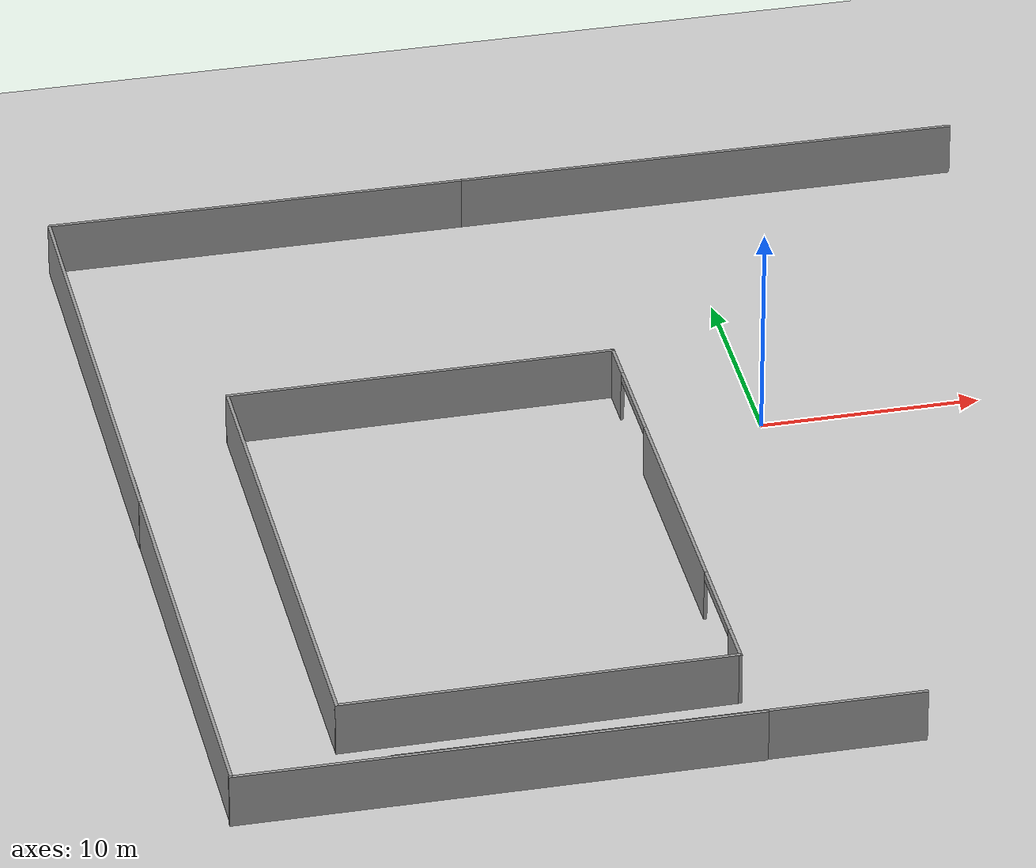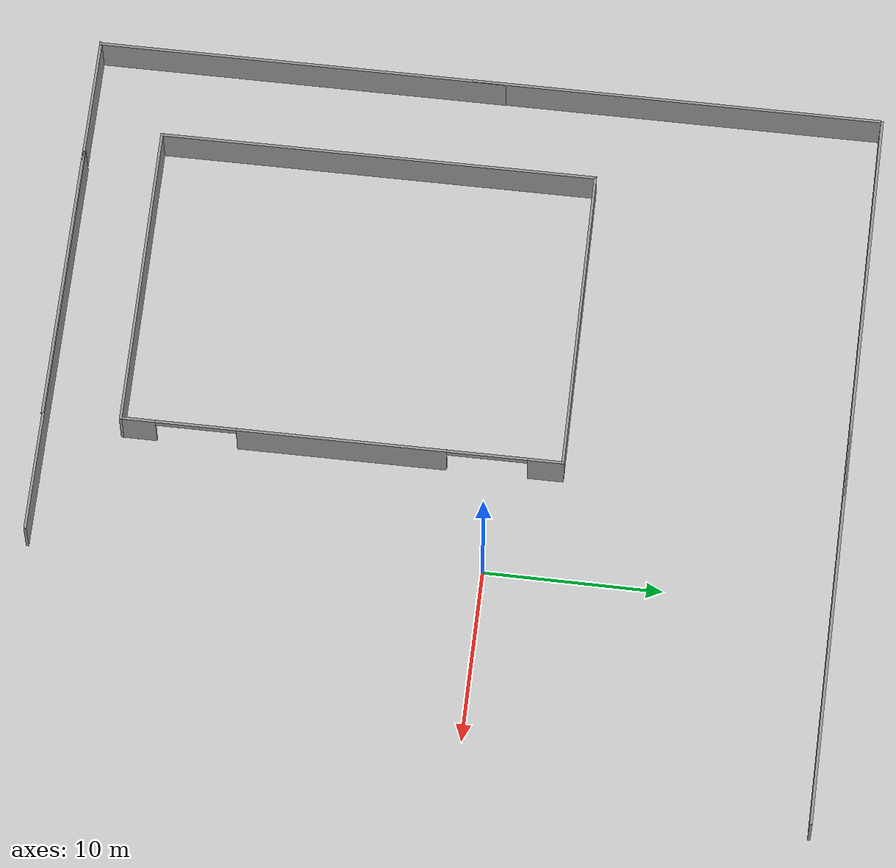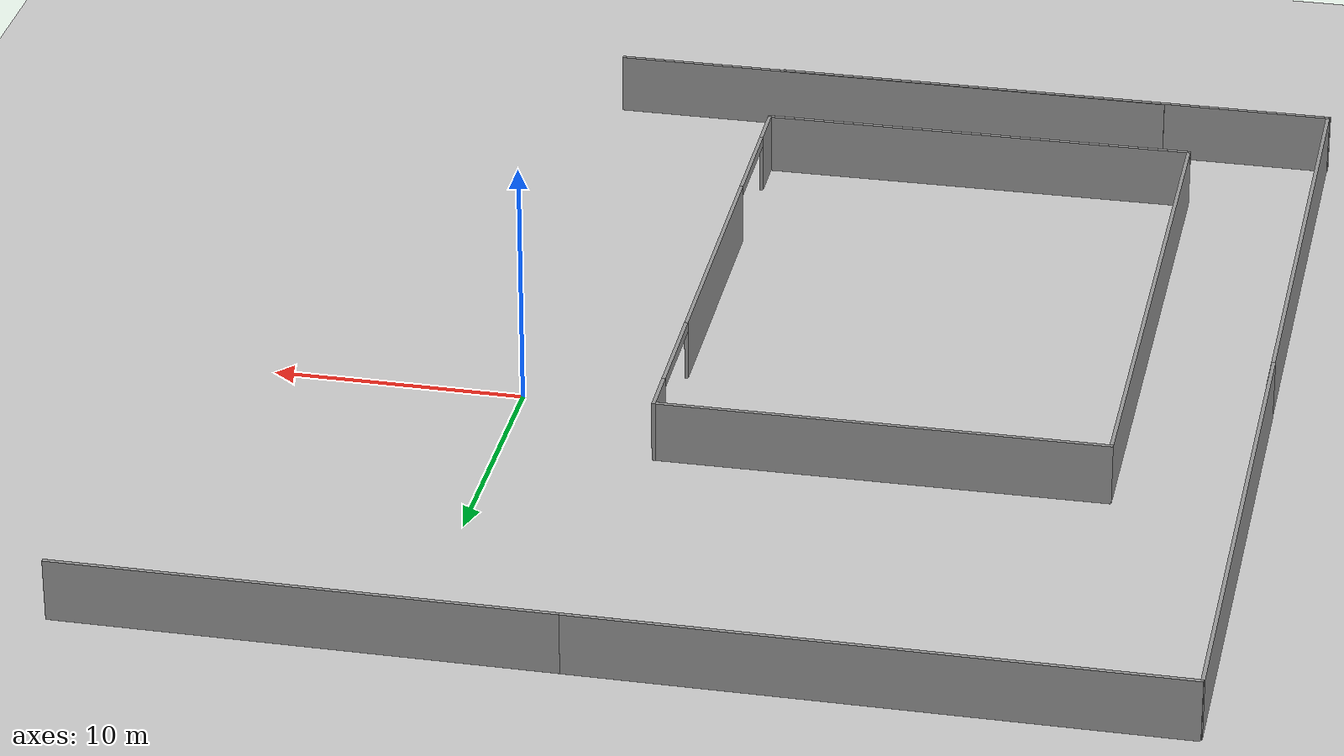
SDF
<sdf version="1.6">
 <world name="default">
  <model name="ground_plane">
   <static>1</static>
   <link name="link">
    <collision name="collision">
     <geometry><plane><normal>0 0 1</normal><size>100 100</size></plane></geometry>
     <surface><friction><ode><mu>100</mu><mu2>50</mu2></ode></friction></surface>
    </collision>
    <visual name="visual">
     <cast_shadows>0</cast_shadows>
     <geometry><plane><normal>0 0 1</normal><size>100 100</size></plane></geometry>
     <material>
      <script><uri>file://media/materials/scripts/gazebo.material</uri><name>Gazebo/Grey</name></script>
     </material>
    </visual>
   </link>
   <pose>-15.0444 -9.09866 0 0 -0 0</pose>
  </model>
  <model name="park_1_clone">
   <pose>-14.7385 -8.62618 0 0 0 -1.56406</pose>
   <link name="Wall_10">
    <collision name="Wall_10_Collision">
     <geometry><box><size>24.75 0.15 2.5</size></box></geometry>
     <pose>0 0 1.25 0 -0 0</pose>
    </collision>
    <visual name="Wall_10_Visual">
     <pose>0 0 1.25 0 -0 0</pose>
     <geometry><box><size>24.75 0.15 2.5</size></box></geometry>
     <material>
      <script><uri>file://media/materials/scripts/gazebo.material</uri><name>Gazebo/Grey</name></script>
      <ambient>1 1 1 1</ambient>
     </material>
    </visual>
    <pose>0 -8.8 0 0 -0 0</pose>
   </link>
   <link name="Wall_11">
    <collision name="Wall_11_Collision">
     <geometry><box><size>17.75 0.15 2.5</size></box></geometry>
     <pose>0 0 1.25 0 -0 0</pose>
    </collision>
    <visual name="Wall_11_Visual">
     <pose>0 0 1.25 0 -0 0</pose>
     <geometry><box><size>17.75 0.15 2.5</size></box></geometry>
     <material>
      <script><uri>file://media/materials/scripts/gazebo.material</uri><name>Gazebo/Grey</name></script>
      <ambient>1 1 1 1</ambient>
     </material>
    </visual>
    <pose>12.3 0 0 0 -0 1.5708</pose>
   </link>
   <link name="Wall_12">
    <pose>0 8.8 0 0 -0 3.14159</pose>
    <visual name="Wall_12_Visual_0">
     <pose>-11.3671 0 1.25 0 -0 0</pose>
     <geometry><box><size>2.0158 0.15 2.5</size></box></geometry>
     <material>
      <script><uri>file://media/materials/scripts/gazebo.material</uri><name>Gazebo/Grey</name></script>
      <ambient>1 1 1 1</ambient>
     </material>
    </visual>
    <collision name="Wall_12_Collision_0">
     <geometry><box><size>2.0158 0.15 2.5</size></box></geometry>
     <pose>-11.3671 0 1.25 0 -0 0</pose>
    </collision>
    <visual name="Wall_12_Visual_1">
     <pose>-0.005473 0 1.25 0 -0 0</pose>
     <geometry><box><size>11.7075 0.15 2.5</size></box></geometry>
     <material>
      <script><uri>file://media/materials/scripts/gazebo.material</uri><name>Gazebo/Grey</name></script>
      <ambient>1 1 1 1</ambient>
     </material>
    </visual>
    <collision name="Wall_12_Collision_1">
     <geometry><box><size>11.7075 0.15 2.5</size></box></geometry>
     <pose>-0.005473 0 1.25 0 -0 0</pose>
    </collision>
    <visual name="Wall_12_Visual_2">
     <pose>11.3616 0 1.25 0 -0 0</pose>
     <geometry><box><size>2.02674 0.15 2.5</size></box></geometry>
     <material>
      <script><uri>file://media/materials/scripts/gazebo.material</uri><name>Gazebo/Grey</name></script>
      <ambient>1 1 1 1</ambient>
     </material>
    </visual>
    <collision name="Wall_12_Collision_2">
     <geometry><box><size>2.02674 0.15 2.5</size></box></geometry>
     <pose>11.3616 0 1.25 0 -0 0</pose>
    </collision>
    <visual name="Wall_12_Visual_3">
     <pose>-8.1092 0 2.3 0 -0 0</pose>
     <geometry><box><size>4.5 0.15 0.4</size></box></geometry>
     <material>
      <script><uri>file://media/materials/scripts/gazebo.material</uri><name>Gazebo/Grey</name></script>
      <ambient>1 1 1 1</ambient>
     </material>
    </visual>
    <collision name="Wall_12_Collision_3">
     <geometry><box><size>4.5 0.15 0.4</size></box></geometry>
     <pose>-8.1092 0 2.3 0 -0 0</pose>
    </collision>
    <visual name="Wall_12_Visual_4">
     <pose>8.09826 0 2.3 0 -0 0</pose>
     <geometry><box><size>4.5 0.15 0.4</size></box></geometry>
     <material>
      <script><uri>file://media/materials/scripts/gazebo.material</uri><name>Gazebo/Grey</name></script>
      <ambient>1 1 1 1</ambient>
     </material>
    </visual>
    <collision name="Wall_12_Collision_4">
     <geometry><box><size>4.5 0.15 0.4</size></box></geometry>
     <pose>8.09826 0 2.3 0 -0 0</pose>
    </collision>
   </link>
   <link name="Wall_4">
    <collision name="Wall_4_Collision">
     <geometry><box><size>17.75 0.15 2.5</size></box></geometry>
     <pose>0 0 1.25 0 -0 0</pose>
    </collision>
    <visual name="Wall_4_Visual">
     <pose>0 0 1.25 0 -0 0</pose>
     <geometry><box><size>17.75 0.15 2.5</size></box></geometry>
     <material>
      <script><uri>file://media/materials/scripts/gazebo.material</uri><name>Gazebo/Grey</name></script>
      <ambient>1 1 1 1</ambient>
     </material>
    </visual>
    <pose>-12.3 0 0 0 0 -1.5708</pose>
   </link>
   <static>1</static>
  </model>
  <model name="wall">
   <pose>-17.432 19.3335 0 0 -0 0</pose>
   <link name="Wall_4">
    <collision name="Wall_4_Collision">
     <geometry><box><size>23.25 0.15 2.5</size></box></geometry>
     <pose>0 0 1.25 0 -0 0</pose>
    </collision>
    <visual name="Wall_4_Visual">
     <pose>0 0 1.25 0 -0 0</pose>
     <geometry><box><size>23.25 0.15 2.5</size></box></geometry>
     <material>
      <script><uri>file://media/materials/scripts/gazebo.material</uri><name>Gazebo/Grey</name></script>
      <ambient>1 1 1 1</ambient>
     </material>
     <meta><layer>0</layer></meta>
    </visual>
   </link>
   <static>1</static>
  </model>
  <model name="wall_0">
   <pose>1.8655 19.3313 0 0 -0 0</pose>
   <link name="Wall_4">
    <collision name="Wall_4_Collision">
     <geometry><box><size>23.25 0.15 2.5</size></box></geometry>
     <pose>0 0 1.25 0 -0 0</pose>
    </collision>
    <visual name="Wall_4_Visual">
     <pose>0 0 1.25 0 -0 0</pose>
     <geometry><box><size>23.25 0.15 2.5</size></box></geometry>
     <material>
      <script><uri>file://media/materials/scripts/gazebo.material</uri><name>Gazebo/Grey</name></script>
      <ambient>1 1 1 1</ambient>
     </material>
     <meta><layer>0</layer></meta>
    </visual>
   </link>
   <static>1</static>
  </model>
  <model name="wall_clone">
   <pose>-28.9599 7.66907 0 0 0 -1.56544</pose>
   <link name="Wall_4">
    <collision name="Wall_4_Collision">
     <geometry><box><size>23.25 0.15 2.5</size></box></geometry>
     <pose>0 0 1.25 0 -0 0</pose>
    </collision>
    <visual name="Wall_4_Visual">
     <pose>0 0 1.25 0 -0 0</pose>
     <geometry><box><size>23.25 0.15 2.5</size></box></geometry>
     <material>
      <script><uri>file://media/materials/scripts/gazebo.material</uri><name>Gazebo/Grey</name></script>
      <ambient>1 1 1 1</ambient>
     </material>
     <meta><layer>0</layer></meta>
    </visual>
   </link>
   <static>1</static>
  </model>
  <model name="wall_clone_0">
   <pose>-17.2593 -25.2165 0 0 -0 0</pose>
   <link name="Wall_4">
    <collision name="Wall_4_Collision">
     <geometry><box><size>23.25 0.15 2.5</size></box></geometry>
     <pose>0 0 1.25 0 -0 0</pose>
    </collision>
    <visual name="Wall_4_Visual">
     <pose>0 0 1.25 0 -0 0</pose>
     <geometry><box><size>23.25 0.15 2.5</size></box></geometry>
     <material>
      <script><uri>file://media/materials/scripts/gazebo.material</uri><name>Gazebo/Grey</name></script>
      <ambient>1 1 1 1</ambient>
     </material>
     <meta><layer>0</layer></meta>
    </visual>
   </link>
   <static>1</static>
  </model>
  <model name="wall_clone_1">
   <pose>-10.284 -25.1692 0 0 -0 0</pose>
   <link name="Wall_4">
    <collision name="Wall_4_Collision">
     <geometry><box><size>23.25 0.15 2.5</size></box></geometry>
     <pose>0 0 1.25 0 -0 0</pose>
    </collision>
    <visual name="Wall_4_Visual">
     <pose>0 0 1.25 0 -0 0</pose>
     <geometry><box><size>23.25 0.15 2.5</size></box></geometry>
     <material>
      <script><uri>file://media/materials/scripts/gazebo.material</uri><name>Gazebo/Grey</name></script>
      <ambient>1 1 1 1</ambient>
     </material>
     <meta><layer>0</layer></meta>
    </visual>
   </link>
   <static>1</static>
  </model>
  <model name="wall_clone_clone_clone">
   <pose>-28.8336 -13.6581 0 0 0 -1.56544</pose>
   <link name="Wall_4">
    <collision name="Wall_4_Collision">
     <geometry><box><size>23.25 0.15 2.5</size></box></geometry>
     <pose>0 0 1.25 0 -0 0</pose>
    </collision>
    <visual name="Wall_4_Visual">
     <pose>0 0 1.25 0 -0 0</pose>
     <geometry><box><size>23.25 0.15 2.5</size></box></geometry>
     <material>
      <script><uri>file://media/materials/scripts/gazebo.material</uri><name>Gazebo/Grey</name></script>
      <ambient>1 1 1 1</ambient>
     </material>
     <meta><layer>0</layer></meta>
    </visual>
   </link>
   <static>1</static>
  </model>
 </world>
</sdf>
